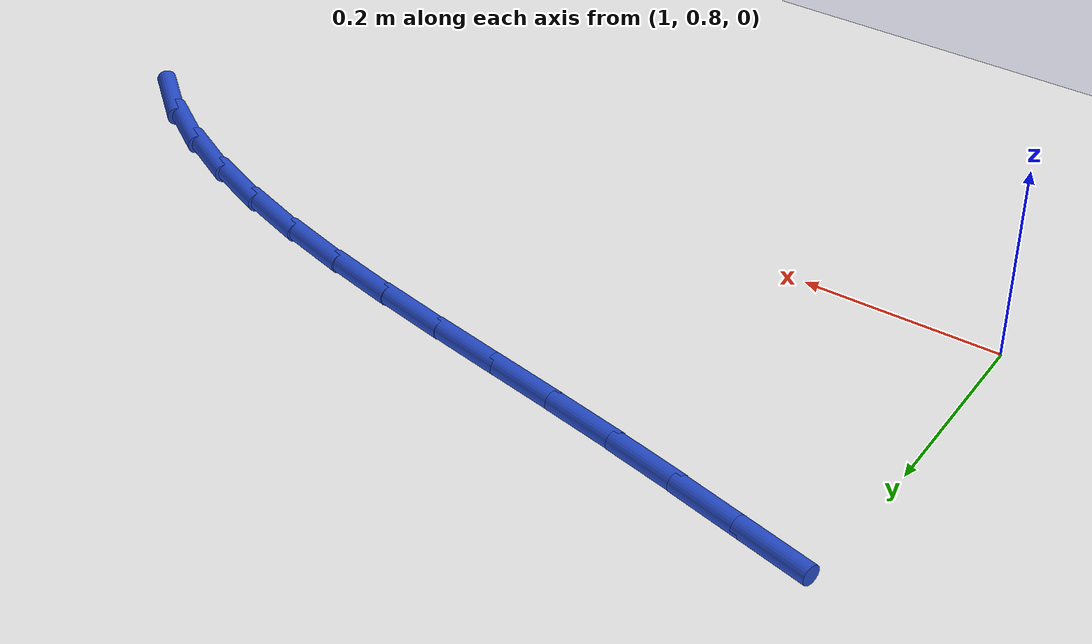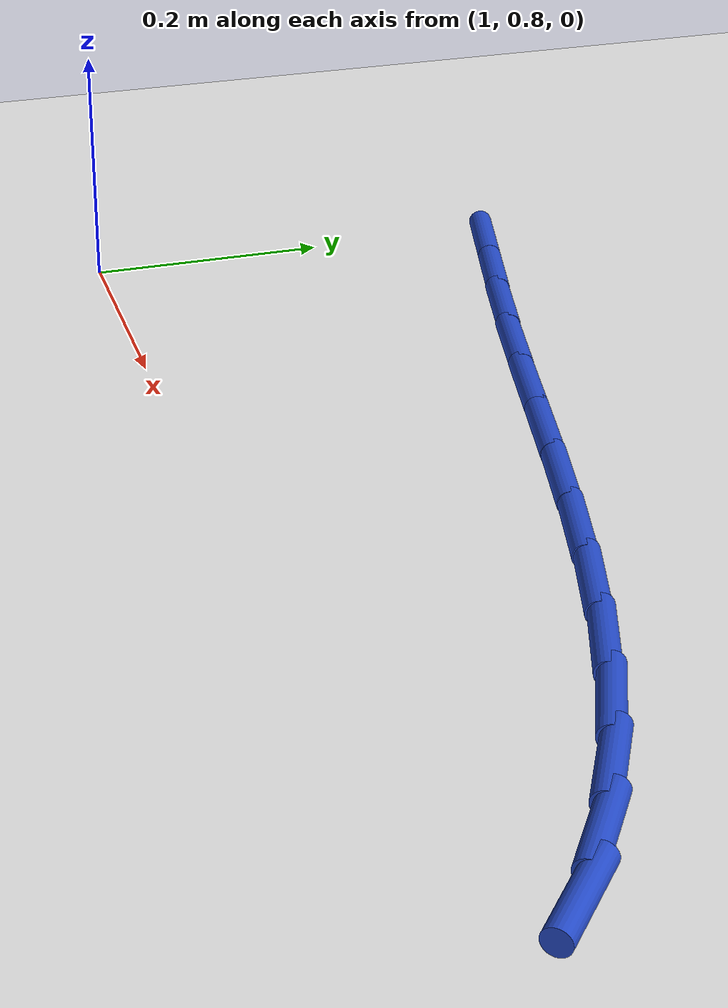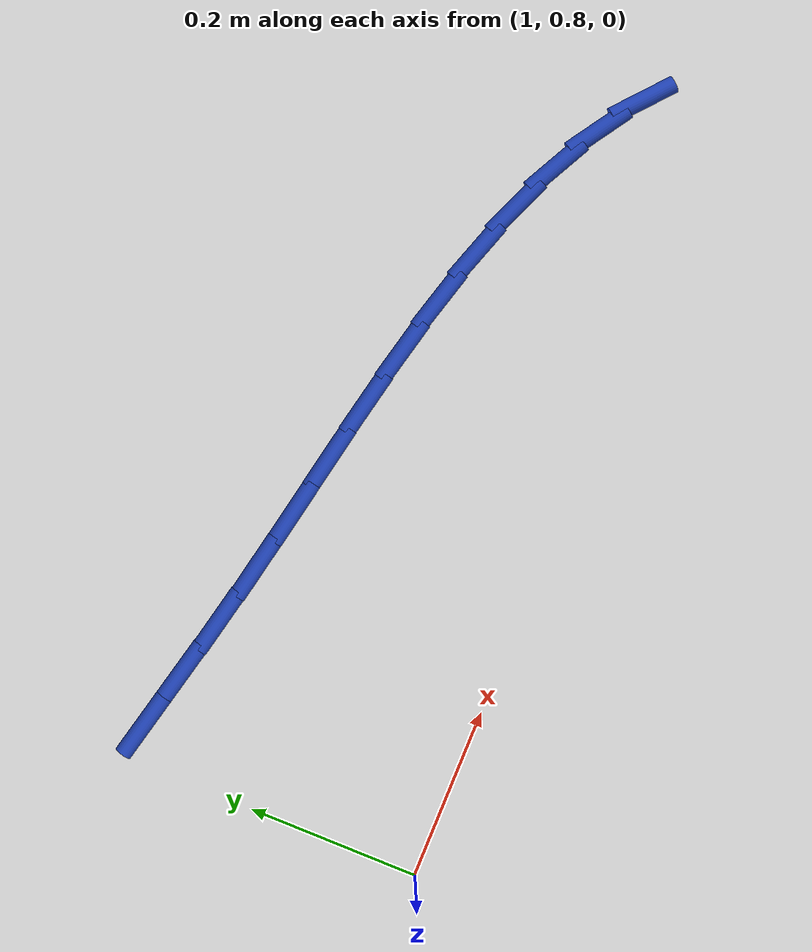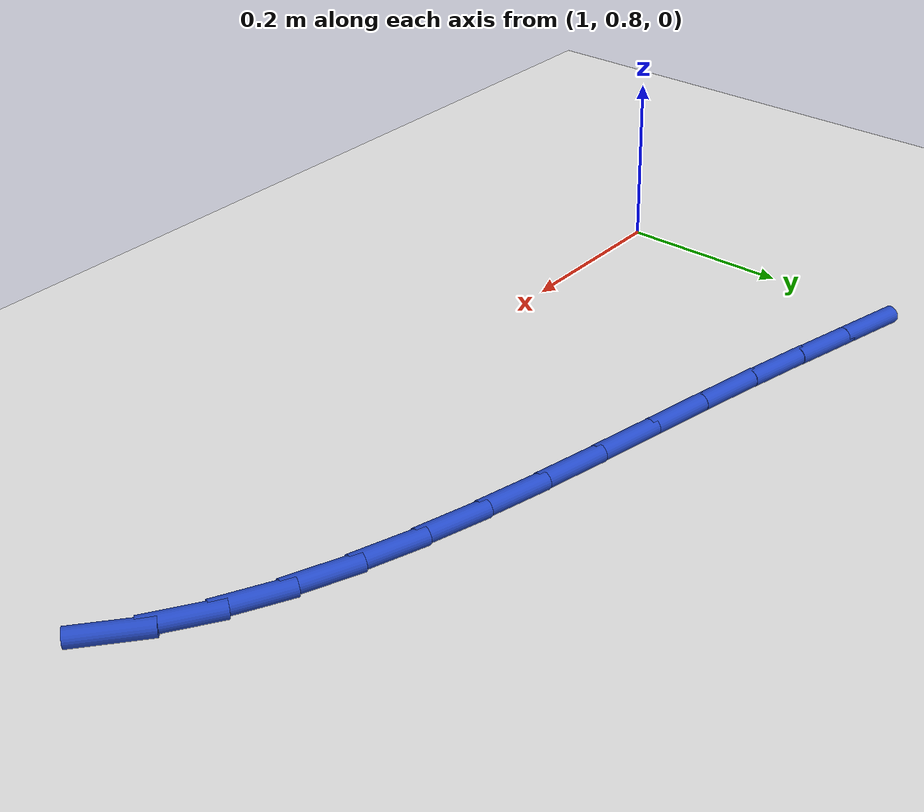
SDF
<sdf version="1.6">
 <world name="default">
  <model name="ground_plane">
   <static>1</static>
   <link name="link">
    <collision name="collision">
     <geometry><plane><normal>0 0 1</normal><size>100 100</size></plane></geometry>
     <surface><friction><ode><mu>100</mu><mu2>50</mu2></ode></friction></surface>
    </collision>
    <visual name="visual">
     <cast_shadows>0</cast_shadows>
     <geometry><plane><normal>0 0 1</normal><size>100 100</size></plane></geometry>
     <material>
      <script><uri>file://media/materials/scripts/gazebo.material</uri><name>Gazebo/WhiteGlow</name></script>
     </material>
    </visual>
   </link>
  </model>
  <model name="line">
   <link name="link_27">
    <pose>1.0445901405587728 1.1502534689817119 0.01 0 1.57 -0.23956565560497103</pose>
    <collision name="collision">
     <geometry><cylinder><radius>0.01</radius><length>0.08</length></cylinder></geometry>
    </collision>
    <visual name="visual">
     <material>
      <script><name>Gazebo/Blue</name><uri>file://media/materials/scripts/gazebo.material</uri></script>
     </material>
     <geometry><cylinder><radius>0.01</radius><length>0.08</length></cylinder></geometry>
    </visual>
   </link>
   <link name="link_28">
    <pose>1.1148131680309925 1.1331010453783867 0.01 0 1.57 -0.23939992292470222</pose>
    <collision name="collision">
     <geometry><cylinder><radius>0.01</radius><length>0.08</length></cylinder></geometry>
    </collision>
    <visual name="visual">
     <material>
      <script><name>Gazebo/Blue</name><uri>file://media/materials/scripts/gazebo.material</uri></script>
     </material>
     <geometry><cylinder><radius>0.01</radius><length>0.08</length></cylinder></geometry>
    </visual>
   </link>
   <link name="link_29">
    <pose>1.1862845603677674 1.1156562520052808 0.01 0 1.57 -0.2245193879811564</pose>
    <collision name="collision">
     <geometry><cylinder><radius>0.01</radius><length>0.08</length></cylinder></geometry>
    </collision>
    <visual name="visual">
     <material>
      <script><name>Gazebo/Blue</name><uri>file://media/materials/scripts/gazebo.material</uri></script>
     </material>
     <geometry><cylinder><radius>0.01</radius><length>0.08</length></cylinder></geometry>
    </visual>
   </link>
   <link name="link_30">
    <pose>1.2587438857951327 1.0991087421288726 0.01 0 1.57 -0.20754674326609335</pose>
    <collision name="collision">
     <geometry><cylinder><radius>0.01</radius><length>0.08</length></cylinder></geometry>
    </collision>
    <visual name="visual">
     <material>
      <script><name>Gazebo/Blue</name><uri>file://media/materials/scripts/gazebo.material</uri></script>
     </material>
     <geometry><cylinder><radius>0.01</radius><length>0.08</length></cylinder></geometry>
    </visual>
   </link>
   <link name="link_31">
    <pose>1.3317580249084247 1.083733492460229 0.01 0 1.57 -0.20034059756055797</pose>
    <collision name="collision">
     <geometry><cylinder><radius>0.01</radius><length>0.08</length></cylinder></geometry>
    </collision>
    <visual name="visual">
     <material>
      <script><name>Gazebo/Blue</name><uri>file://media/materials/scripts/gazebo.material</uri></script>
     </material>
     <geometry><cylinder><radius>0.01</radius><length>0.08</length></cylinder></geometry>
    </visual>
   </link>
   <link name="link_32">
    <pose>1.4047259805799772 1.0689162798483045 0.01 0 1.57 -0.2033367766905666</pose>
    <collision name="collision">
     <geometry><cylinder><radius>0.01</radius><length>0.08</length></cylinder></geometry>
    </collision>
    <visual name="visual">
     <material>
      <script><name>Gazebo/Blue</name><uri>file://media/materials/scripts/gazebo.material</uri></script>
     </material>
     <geometry><cylinder><radius>0.01</radius><length>0.08</length></cylinder></geometry>
    </visual>
   </link>
   <link name="link_33">
    <pose>1.477039822328112 1.0540061571662818 0.01 0 1.57 -0.21685346973574973</pose>
    <collision name="collision">
     <geometry><cylinder><radius>0.01</radius><length>0.08</length></cylinder></geometry>
    </collision>
    <visual name="visual">
     <material>
      <script><name>Gazebo/Blue</name><uri>file://media/materials/scripts/gazebo.material</uri></script>
     </material>
     <geometry><cylinder><radius>0.01</radius><length>0.08</length></cylinder></geometry>
    </visual>
   </link>
   <link name="link_34">
    <pose>1.548091619671151 1.0383521772873459 0.01 0 1.57 -0.24162004401936793</pose>
    <collision name="collision">
     <geometry><cylinder><radius>0.01</radius><length>0.08</length></cylinder></geometry>
    </collision>
    <visual name="visual">
     <material>
      <script><name>Gazebo/Blue</name><uri>file://media/materials/scripts/gazebo.material</uri></script>
     </material>
     <geometry><cylinder><radius>0.01</radius><length>0.08</length></cylinder></geometry>
    </visual>
   </link>
   <link name="link_35">
    <pose>1.617273442127415 1.0213033930846802 0.01 0 1.57 -0.27880234577149565</pose>
    <collision name="collision">
     <geometry><cylinder><radius>0.01</radius><length>0.08</length></cylinder></geometry>
    </collision>
    <visual name="visual">
     <material>
      <script><name>Gazebo/Blue</name><uri>file://media/materials/scripts/gazebo.material</uri></script>
     </material>
     <geometry><cylinder><radius>0.01</radius><length>0.08</length></cylinder></geometry>
    </visual>
   </link>
   <link name="link_36">
    <pose>1.6839773592152265 1.002208857431469 0.01 0 1.57 -0.33000646269577283</pose>
    <collision name="collision">
     <geometry><cylinder><radius>0.01</radius><length>0.08</length></cylinder></geometry>
    </collision>
    <visual name="visual">
     <material>
      <script><name>Gazebo/Blue</name><uri>file://media/materials/scripts/gazebo.material</uri></script>
     </material>
     <geometry><cylinder><radius>0.01</radius><length>0.08</length></cylinder></geometry>
    </visual>
   </link>
   <link name="link_37">
    <pose>1.747595440452906 0.9804176232008955 0.01 0 1.57 -0.39721182773829145</pose>
    <collision name="collision">
     <geometry><cylinder><radius>0.01</radius><length>0.08</length></cylinder></geometry>
    </collision>
    <visual name="visual">
     <material>
      <script><name>Gazebo/Blue</name><uri>file://media/materials/scripts/gazebo.material</uri></script>
     </material>
     <geometry><cylinder><radius>0.01</radius><length>0.08</length></cylinder></geometry>
    </visual>
   </link>
   <link name="link_38">
    <pose>1.8075197553587756 0.9552787432661447 0.01 0 1.57 -0.48253890928608806</pose>
    <collision name="collision">
     <geometry><cylinder><radius>0.01</radius><length>0.08</length></cylinder></geometry>
    </collision>
    <visual name="visual">
     <material>
      <script><name>Gazebo/Blue</name><uri>file://media/materials/scripts/gazebo.material</uri></script>
     </material>
     <geometry><cylinder><radius>0.01</radius><length>0.08</length></cylinder></geometry>
    </visual>
   </link>
   <link name="link_39">
    <pose>1.8631423734511567 0.9261412705003996 0.01 0 1.57 -0.5877070205710841</pose>
    <collision name="collision">
     <geometry><cylinder><radius>0.01</radius><length>0.08</length></cylinder></geometry>
    </collision>
    <visual name="visual">
     <material>
      <script><name>Gazebo/Blue</name><uri>file://media/materials/scripts/gazebo.material</uri></script>
     </material>
     <geometry><cylinder><radius>0.01</radius><length>0.08</length></cylinder></geometry>
    </visual>
   </link>
   <link name="link_40">
    <pose>1.9138553642483715 0.8923542577768446 0.01 0 1.57 -0.7130552346462379</pose>
    <collision name="collision">
     <geometry><cylinder><radius>0.01</radius><length>0.08</length></cylinder></geometry>
    </collision>
    <visual name="visual">
     <material>
      <script><name>Gazebo/Blue</name><uri>file://media/materials/scripts/gazebo.material</uri></script>
     </material>
     <geometry><cylinder><radius>0.01</radius><length>0.08</length></cylinder></geometry>
    </visual>
   </link>
  </model>
 </world>
</sdf>
